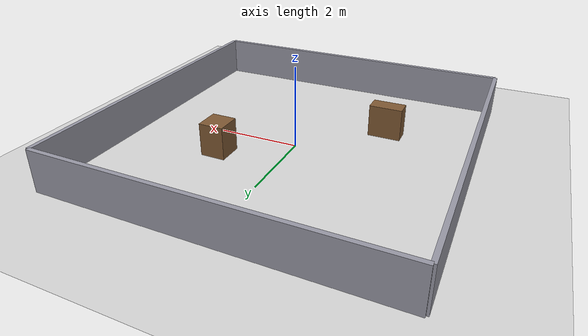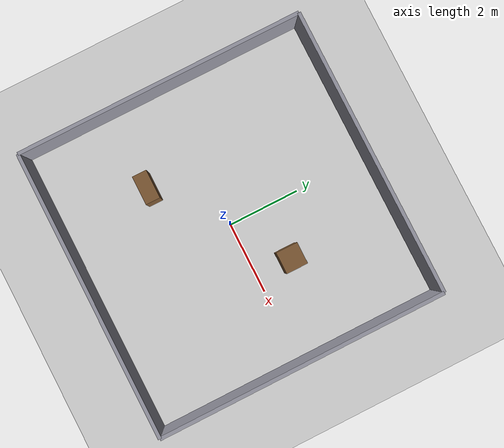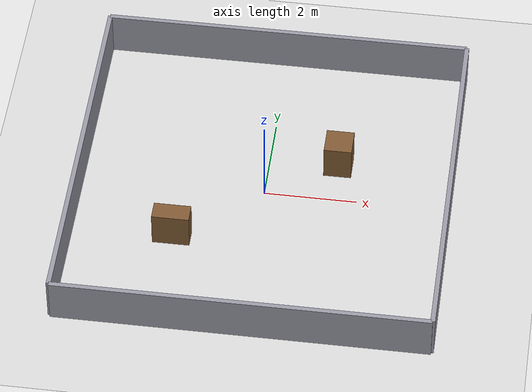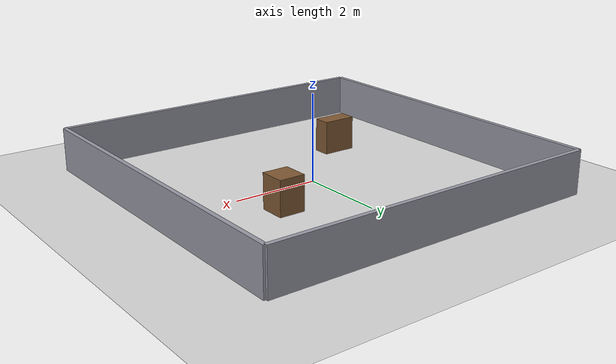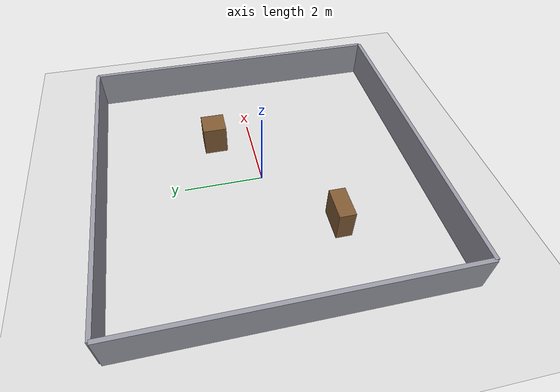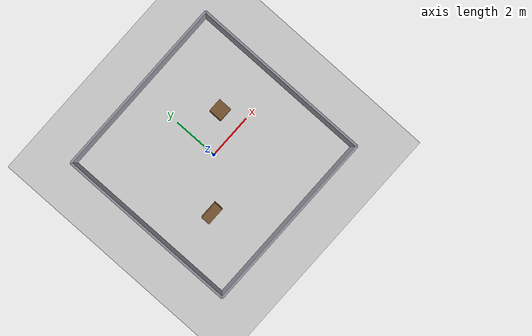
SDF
<?xml version="1.0" ?>
<sdf version="1.10">
  <world name="lab">

    <physics name="1ms" type="ignored">
      <max_step_size>0.002</max_step_size>
      <real_time_factor>1.0</real_time_factor>
    </physics>

    <plugin filename="gz-sim-physics-system"            name="gz::sim::systems::Physics"/>
    <plugin filename="gz-sim-sensors-system"            name="gz::sim::systems::Sensors">
      <render_engine>ogre2</render_engine>
    </plugin>
    <plugin filename="gz-sim-scene-broadcaster-system"  name="gz::sim::systems::SceneBroadcaster"/>
    <plugin filename="gz-sim-user-commands-system"      name="gz::sim::systems::UserCommands"/>
    <plugin filename="gz-sim-contact-system"            name="gz::sim::systems::Contact"/>
    <plugin filename="gz-sim-imu-system"                name="gz::sim::systems::Imu"/>

    <scene>
      <ambient>0.4 0.4 0.4 1</ambient>
      <background>0.7 0.7 0.8 1</background>
      <grid>false</grid>
    </scene>

    <light type="directional" name="sun">
      <cast_shadows>true</cast_shadows>
      <pose>0 0 10 0 0 0</pose>
      <diffuse>0.9 0.9 0.9 1</diffuse>
      <specular>0.2 0.2 0.2 1</specular>
      <direction>-0.4 0.3 -0.9</direction>
    </light>

    <!-- ground -->
    <model name="ground_plane">
      <static>true</static>
      <link name="link">
        <collision name="c"><geometry><plane><normal>0 0 1</normal><size>100 100</size></plane></geometry></collision>
        <visual name="v">
          <geometry><plane><normal>0 0 1</normal><size>100 100</size></plane></geometry>
          <material><ambient>0.8 0.8 0.8 1</ambient><diffuse>0.85 0.85 0.85 1</diffuse></material>
        </visual>
      </link>
    </model>

    <!-- a simple ~8x8 m room (4 walls) + two interior obstacles, to exercise SLAM/exploration.
         Reusable macro by hand: each wall is a static box. -->
    <model name="room">
      <static>true</static>
      <link name="walls">
        <!-- N/S/E/W walls (0.1 thick, 1.0 tall), enclosing 8x8 m centered at origin -->
        <collision name="n_c"><pose> 0  4 0.5 0 0 0</pose><geometry><box><size>8 0.1 1.0</size></box></geometry></collision>
        <visual    name="n_v"><pose> 0  4 0.5 0 0 0</pose><geometry><box><size>8 0.1 1.0</size></box></geometry><material><diffuse>0.6 0.6 0.65 1</diffuse></material></visual>
        <collision name="s_c"><pose> 0 -4 0.5 0 0 0</pose><geometry><box><size>8 0.1 1.0</size></box></geometry></collision>
        <visual    name="s_v"><pose> 0 -4 0.5 0 0 0</pose><geometry><box><size>8 0.1 1.0</size></box></geometry><material><diffuse>0.6 0.6 0.65 1</diffuse></material></visual>
        <collision name="e_c"><pose> 4  0 0.5 0 0 0</pose><geometry><box><size>0.1 8 1.0</size></box></geometry></collision>
        <visual    name="e_v"><pose> 4  0 0.5 0 0 0</pose><geometry><box><size>0.1 8 1.0</size></box></geometry><material><diffuse>0.6 0.6 0.65 1</diffuse></material></visual>
        <collision name="w_c"><pose>-4  0 0.5 0 0 0</pose><geometry><box><size>0.1 8 1.0</size></box></geometry></collision>
        <visual    name="w_v"><pose>-4  0 0.5 0 0 0</pose><geometry><box><size>0.1 8 1.0</size></box></geometry><material><diffuse>0.6 0.6 0.65 1</diffuse></material></visual>
        <!-- interior obstacles -->
        <collision name="o1_c"><pose> 1.5  1.0 0.4 0 0 0</pose><geometry><box><size>0.6 0.6 0.8</size></box></geometry></collision>
        <visual    name="o1_v"><pose> 1.5  1.0 0.4 0 0 0</pose><geometry><box><size>0.6 0.6 0.8</size></box></geometry><material><diffuse>0.5 0.35 0.2 1</diffuse></material></visual>
        <collision name="o2_c"><pose>-1.8 -1.5 0.4 0 0 0</pose><geometry><box><size>0.8 0.4 0.8</size></box></geometry></collision>
        <visual    name="o2_v"><pose>-1.8 -1.5 0.4 0 0 0</pose><geometry><box><size>0.8 0.4 0.8</size></box></geometry><material><diffuse>0.5 0.35 0.2 1</diffuse></material></visual>
      </link>
    </model>

  </world>
</sdf>
